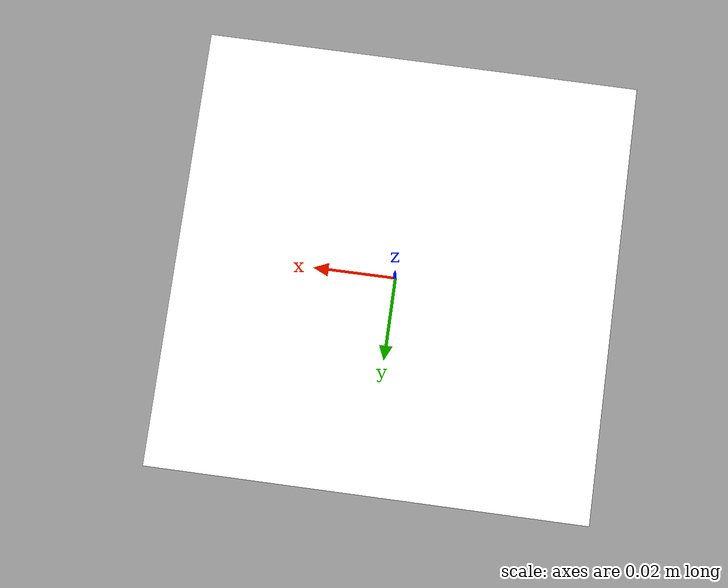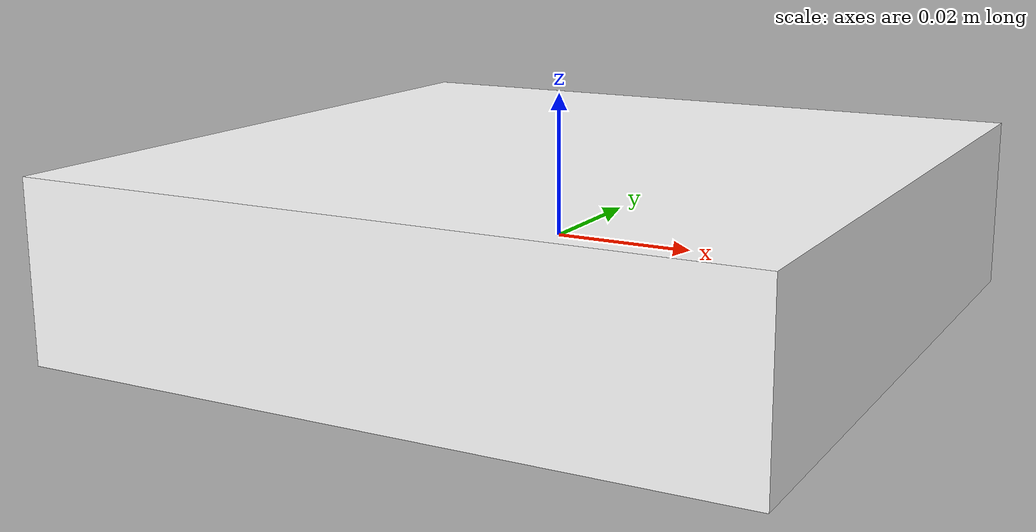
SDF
<?xml version='1.0'?>
<sdf version='1.6'>
  <model name='aruco_wood_small4'>
    <link name='base_link'>
      <inertial>
        <mass>0.0296311</mass>
        <inertia>
          <ixx>3.309e-05</ixx>
          <ixy>0</ixy>
          <ixz>0</ixz>
          <iyy>1.791e-05</iyy>
          <iyz>0</iyz>
          <izz>1.571e-05</izz>
        </inertia>
        <pose frame=''>0 0 0 0 -0 0</pose>
      </inertial>
      <pose frame=''>0 0 0 0 -0 0</pose>
      <gravity>1</gravity>
      <self_collide>0</self_collide>
      <kinematic>0</kinematic>
      <enable_wind>0</enable_wind>
      <visual name='visual'>
        <pose frame=''>0 0 0 0 -0 0</pose>
        <geometry>
          <box>
            <size>0.1 0.1 0.025</size>
          </box>
        </geometry>
        <material>
          <script>
            <uri>file://scripts</uri>
            <uri>file://textures</uri>
            <name>aruco/standard4</name>
          </script>
          <emissive>0 0 0 1</emissive>
          <shader type='vertex'>
            <normal_map>__default__</normal_map>
          </shader>
          <ambient>1 1 1 1</ambient>
          <diffuse>1 1 1 1</diffuse>
          <specular>0 0 0 1</specular>
        </material>
        <transparency>0</transparency>
        <cast_shadows>1</cast_shadows>
      </visual>
      <collision name='collision'>
        <laser_retro>0</laser_retro>
        <max_contacts>10</max_contacts>
        <pose frame=''>0 0 0 0 -0 0</pose>
        <geometry>
          <box>
            <size>0.1 0.1 0.025</size>
          </box>
        </geometry>
        <surface>
          <friction>
            <ode>
              <mu>1</mu>
              <mu2>1</mu2>
              <fdir1>0 0 0</fdir1>
              <slip1>0</slip1>
              <slip2>0</slip2>
            </ode>
            <torsional>
              <coefficient>1</coefficient>
              <patch_radius>0</patch_radius>
              <surface_radius>0</surface_radius>
              <use_patch_radius>1</use_patch_radius>
              <ode>
                <slip>0</slip>
              </ode>
            </torsional>
          </friction>
          <bounce>
            <restitution_coefficient>0</restitution_coefficient>
            <threshold>1e+06</threshold>
          </bounce>
          <contact>
            <collide_without_contact>0</collide_without_contact>
            <collide_without_contact_bitmask>1</collide_without_contact_bitmask>
            <collide_bitmask>1</collide_bitmask>
            <ode>
              <soft_cfm>0</soft_cfm>
              <soft_erp>0.2</soft_erp>
              <kp>1e+13</kp>
              <kd>1</kd>
              <max_vel>0.01</max_vel>
              <min_depth>0</min_depth>
            </ode>
            <bullet>
              <split_impulse>1</split_impulse>
              <split_impulse_penetration_threshold>-0.01</split_impulse_penetration_threshold>
              <soft_cfm>0</soft_cfm>
              <soft_erp>0.2</soft_erp>
              <kp>1e+13</kp>
              <kd>1</kd>
            </bullet>
          </contact>
        </surface>
      </collision>
    </link>
    <static>0</static>
    <allow_auto_disable>1</allow_auto_disable>
  </model>
</sdf>
